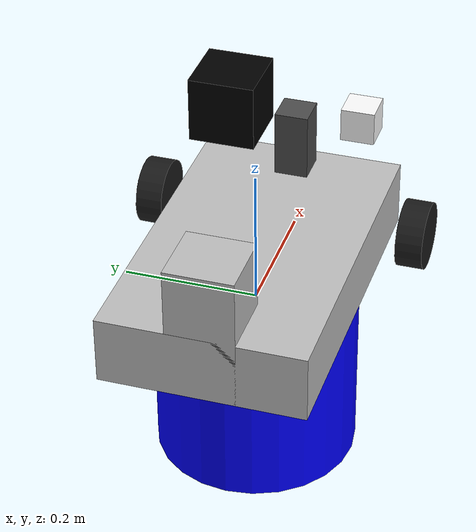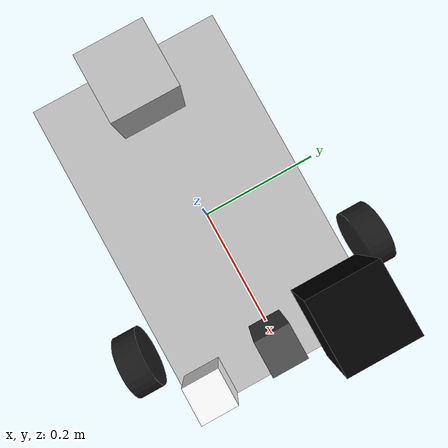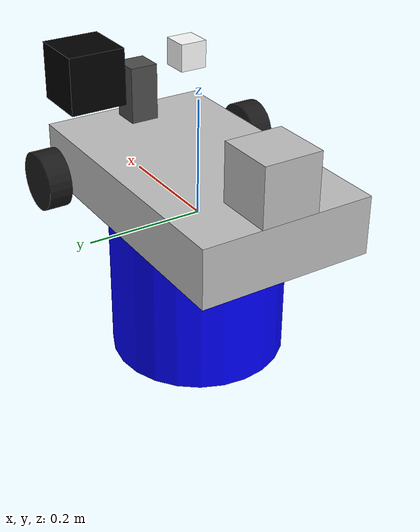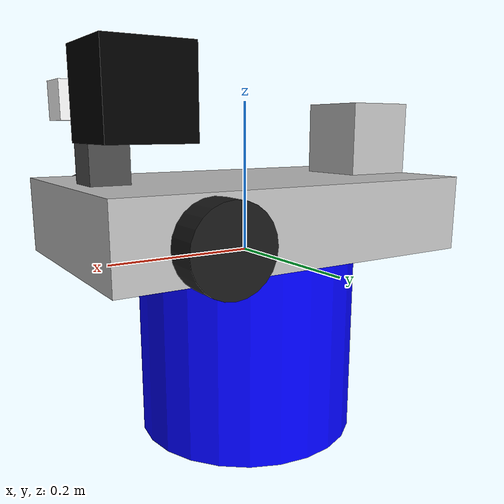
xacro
<?xml version="1.0"?>
<robot xmlns:xacro="http://www.ros.org/wiki/xacro" name="firefighter_robot">

  <!-- Robot Properties -->
  <xacro:property name="base_length" value="0.5" />
  <xacro:property name="base_width" value="0.3" />
  <xacro:property name="base_height" value="0.1" />
  <xacro:property name="wheel_radius" value="0.05" />
  <xacro:property name="wheel_width" value="0.04" />
  <xacro:property name="wheel_ygap" value="0.2" />
  <xacro:property name="wheel_xoff" value="0.15" />
  <xacro:property name="wheel_zoff" value="0.05" />
  <xacro:property name="caster_radius" value="0.025" />
  <xacro:property name="caster_xoff" value="-0.15" />

  <!-- Base Link (Heat-Resistant Chassis) -->
  <link name="base_link">
    <inertial>
      <origin xyz="0 0 ${base_height/2}" rpy="0 0 0" />
      <mass value="5.0" />
      <inertia ixx="0.1" ixy="0" ixz="0" iyy="0.1" iyz="0" izz="0.1" />
    </inertial>
    <visual>
      <origin xyz="0 0 ${base_height/2}" rpy="0 0 0" />
      <geometry>
        <box size="${base_length} ${base_width} ${base_height}" />
      </geometry>
      <material name="silver">
        <color rgba="0.75 0.75 0.75 1.0" /> <!-- Heat-resistant material -->
      </material>
    </visual>
    <collision>
      <origin xyz="0 0 ${base_height/2}" rpy="0 0 0" />
      <geometry>
        <box size="${base_length} ${base_width} ${base_height}" />
      </geometry>
    </collision>
  </link>

  <!-- Left Wheel -->
  <link name="left_wheel">
    <inertial>
      <origin xyz="0 0 0" rpy="${pi/2} 0 0" />
      <mass value="0.5" />
      <inertia ixx="0.001" ixy="0" ixz="0" iyy="0.001" iyz="0" izz="0.001" />
    </inertial>
    <visual>
      <origin xyz="0 0 0" rpy="${pi/2} 0 0" />
      <geometry>
        <cylinder radius="${wheel_radius}" length="${wheel_width}" />
      </geometry>
      <material name="black">
        <color rgba="0.1 0.1 0.1 1.0" />
      </material>
    </visual>
    <collision>
      <origin xyz="0 0 0" rpy="${pi/2} 0 0" />
      <geometry>
        <cylinder radius="${wheel_radius}" length="${wheel_width}" />
      </geometry>
    </collision>
  </link>

  <!-- Left Wheel Joint -->
  <joint name="left_wheel_joint" type="continuous">
    <parent link="base_link" />
    <child link="left_wheel" />
    <origin xyz="${wheel_xoff} ${wheel_ygap} ${wheel_zoff}" rpy="0 0 0" />
    <axis xyz="0 1 0" />
    <dynamics damping="0.1" friction="0.1" />
  </joint>

  <!-- Right Wheel -->
  <link name="right_wheel">
    <inertial>
      <origin xyz="0 0 0" rpy="${pi/2} 0 0" />
      <mass value="0.5" />
      <inertia ixx="0.001" ixy="0" ixz="0" iyy="0.001" iyz="0" izz="0.001" />
    </inertial>
    <visual>
      <origin xyz="0 0 0" rpy="${pi/2} 0 0" />
      <geometry>
        <cylinder radius="${wheel_radius}" length="${wheel_width}" />
      </geometry>
      <material name="black">
        <color rgba="0.1 0.1 0.1 1.0" />
      </material>
    </visual>
    <collision>
      <origin xyz="0 0 0" rpy="${pi/2} 0 0" />
      <geometry>
        <cylinder radius="${wheel_radius}" length="${wheel_width}" />
      </geometry>
    </collision>
  </link>

  <!-- Right Wheel Joint -->
  <joint name="right_wheel_joint" type="continuous">
    <parent link="base_link" />
    <child link="right_wheel" />
    <origin xyz="${wheel_xoff} -${wheel_ygap} ${wheel_zoff}" rpy="0 0 0" />
    <axis xyz="0 1 0" />
    <dynamics damping="0.1" friction="0.1" />
  </joint>

  <!-- Caster Wheel -->
  <link name="caster">
    <inertial>
      <origin xyz="0 0 0" rpy="0 0 0" />
      <mass value="0.1" />
      <inertia ixx="0.0001" ixy="0" ixz="0" iyy="0.0001" iyz="0" izz="0.0001" />
    </inertial>
    <visual>
      <origin xyz="0 0 0" rpy="0 0 0" />
      <geometry>
        <sphere radius="${caster_radius}" />
      </geometry>
      <material name="black">
        <color rgba="0.1 0.1 0.1 1.0" />
      </material>
    </visual>
    <collision>
      <origin xyz="0 0 0" rpy="0 0 0" />
      <geometry>
        <sphere radius="${caster_radius}" />
      </geometry>
    </collision>
  </link>

  <!-- Caster Joint -->
  <joint name="caster_joint" type="fixed">
    <parent link="base_link" />
    <child link="caster" />
    <origin xyz="${caster_xoff} 0 ${caster_radius}" rpy="0 0 0" />
  </joint>

  <!-- Sensor Mount (For Temperature and Gas Sensors) -->
  <link name="sensor_mount">
    <inertial>
      <origin xyz="0 0 0" rpy="0 0 0" />
      <mass value="0.1" />
      <inertia ixx="0.0001" ixy="0" ixz="0" iyy="0.0001" iyz="0" izz="0.0001" />
    </inertial>
    <visual>
      <origin xyz="0 0 0.05" rpy="0 0 0" />
      <geometry>
        <box size="0.05 0.05 0.1" />
      </geometry>
      <material name="grey">
        <color rgba="0.3 0.3 0.3 1.0" />
      </material>
    </visual>
    <collision>
      <origin xyz="0 0 0.05" rpy="0 0 0" />
      <geometry>
        <box size="0.05 0.05 0.1" />
      </geometry>
    </collision>
  </link>

  <!-- Sensor Mount Joint -->
  <joint name="sensor_mount_joint" type="fixed">
    <parent link="base_link" />
    <child link="sensor_mount" />
    <origin xyz="0.2 0 ${base_height}" rpy="0 0 0" />
  </joint>

  <!-- Specialized Links for Firefighter Robot (Document 5, Page 1) -->
  <!-- Thermal Camera -->
  <link name="thermal_camera_link">
    <inertial>
      <origin xyz="0 0 0" rpy="0 0 0" />
      <mass value="0.5" />
      <inertia ixx="0.001" ixy="0" ixz="0" iyy="0.001" iyz="0" izz="0.001" />
    </inertial>
    <visual>
      <origin xyz="0 0 0" rpy="0 0 0" />
      <geometry>
        <box size="0.1 0.1 0.1" />
      </geometry>
      <material name="black">
        <color rgba="0.0 0.0 0.0 1.0" />
      </material>
    </visual>
    <collision>
      <origin xyz="0 0 0" rpy="0 0 0" />
      <geometry>
        <box size="0.1 0.1 0.1" />
      </geometry>
    </collision>
  </link>

  <!-- Water Tank (for Water/Foam Dispensing) -->
  <link name="water_tank_link">
    <inertial>
      <origin xyz="0 0 0" rpy="0 0 0" />
      <mass value="2.0" />
      <inertia ixx="0.01" ixy="0" ixz="0" iyy="0.01" iyz="0" izz="0.01" />
    </inertial>
    <visual>
      <origin xyz="0 0 0" rpy="0 0 0" />
      <geometry>
        <cylinder radius="0.15" length="0.3" />
      </geometry>
      <material name="blue">
        <color rgba="0.0 0.0 1.0 1.0" />
      </material>
    </visual>
    <collision>
      <origin xyz="0 0 0" rpy="0 0 0" />
      <geometry>
        <cylinder radius="0.15" length="0.3" />
      </geometry>
    </collision>
  </link>

  <!-- Pump (for Water/Foam Dispensing) -->
  <link name="pump_link">
    <inertial>
      <origin xyz="0 0 0" rpy="0 0 0" />
      <mass value="1.0" />
      <inertia ixx="0.001" ixy="0" ixz="0" iyy="0.001" iyz="0" izz="0.001" />
    </inertial>
    <visual>
      <origin xyz="0 0 0" rpy="0 0 0" />
      <geometry>
        <box size="0.1 0.1 0.2" />
      </geometry>
      <material name="silver">
        <color rgba="0.75 0.75 0.75 1.0" />
      </material>
    </visual>
    <collision>
      <origin xyz="0 0 0" rpy="0 0 0" />
      <geometry>
        <box size="0.1 0.1 0.2" />
      </geometry>
    </collision>
  </link>

  <!-- High-Intensity Light -->
  <link name="light_link">
    <inertial>
      <origin xyz="0 0 0" rpy="0 0 0" />
      <mass value="0.2" />
      <inertia ixx="0.0005" ixy="0" ixz="0" iyy="0.0005" iyz="0" izz="0.0005" />
    </inertial>
    <visual>
      <origin xyz="0 0 0" rpy="0 0 0" />
      <geometry>
        <box size="0.05 0.05 0.05" />
      </geometry>
      <material name="white">
        <color rgba="1.0 1.0 1.0 1.0" />
      </material>
    </visual>
    <collision>
      <origin xyz="0 0 0" rpy="0 0 0" />
      <geometry>
        <box size="0.05 0.05 0.05" />
      </geometry>
    </collision>
  </link>

  <!-- Joints for Specialized Components -->
  <joint name="thermal_camera_joint" type="fixed">
    <parent link="base_link" />
    <child link="thermal_camera_link" />
    <origin xyz="0.2 0.1 0.2" rpy="0 0 0" />
  </joint>

  <joint name="water_tank_joint" type="fixed">
    <parent link="base_link" />
    <child link="water_tank_link" />
    <origin xyz="0 0 -0.1" rpy="0 0 0" />
  </joint>

  <joint name="pump_joint" type="fixed">
    <parent link="base_link" />
    <child link="pump_link" />
    <origin xyz="-0.2 0 0.1" rpy="0 0 0" />
  </joint>

  <joint name="light_joint" type="fixed">
    <parent link="base_link" />
    <child link="light_link" />
    <origin xyz="0.2 -0.1 0.2" rpy="0 0 0" />
  </joint>

  <!-- Ignition Gazebo Plugins -->
  <gazebo>
    <!-- Differential Drive System -->
    <plugin filename="ign-gazebo-diff-drive-system" name="ignition::gazebo::systems::DiffDrive">
      <left_joint>left_wheel_joint</left_joint>
      <right_joint>right_wheel_joint</right_joint>
      <wheel_separation>${2 * wheel_ygap}</wheel_separation>
      <wheel_radius>${wheel_radius}</wheel_radius>
      <odom_publish_frequency>10</odom_publish_frequency>
      <topic>/cmd_vel</topic>
      <frame_id>odom</frame_id>
      <child_frame_id>base_link</child_frame_id>
    </plugin>

    <!-- Thermal Camera Sensor -->
    <plugin filename="ign-gazebo-camera-system" name="ignition::gazebo::systems::Camera">
      <topic>/firefighter_robot/thermal_camera</topic>
      <camera>
        <horizontal_fov>1.047</horizontal_fov>  <!-- 60 degrees -->
        <image>
          <width>320</width>
          <height>240</height>
          <format>R8G8B8</format>
        </image>
        <clip>
          <near>0.1</near>
          <far>100</far>
        </clip>
      </camera>
      <link>thermal_camera_link</link>
    </plugin>

    <!-- IMU Sensor (For Temperature/Gas Sensors) -->
    <plugin filename="ign-gazebo-imu-system" name="ignition::gazebo::systems::Imu">
      <topic>/firefighter_robot/imu</topic>
      <update_rate>100</update_rate>
    </plugin>

    <!-- Material Colors for Ignition Gazebo -->
    <material reference="base_link">
      <ambient>0.75 0.75 0.75 1.0</ambient>
      <diffuse>0.75 0.75 0.75 1.0</diffuse>
    </material>
    <material reference="left_wheel">
      <ambient>0.1 0.1 0.1 1.0</ambient>
      <diffuse>0.1 0.1 0.1 1.0</diffuse>
    </material>
    <material reference="right_wheel">
      <ambient>0.1 0.1 0.1 1.0</ambient>
      <diffuse>0.1 0.1 0.1 1.0</diffuse>
    </material>
    <material reference="caster">
      <ambient>0.1 0.1 0.1 1.0</ambient>
      <diffuse>0.1 0.1 0.1 1.0</diffuse>
    </material>
    <material reference="sensor_mount">
      <ambient>0.3 0.3 0.3 1.0</ambient>
      <diffuse>0.3 0.3 0.3 1.0</diffuse>
    </material>
    <material reference="thermal_camera_link">
      <ambient>0.0 0.0 0.0 1.0</ambient>
      <diffuse>0.0 0.0 0.0 1.0</diffuse>
    </material>
    <material reference="water_tank_link">
      <ambient>0.0 0.0 1.0 1.0</ambient>
      <diffuse>0.0 0.0 1.0 1.0</diffuse>
    </material>
    <material reference="pump_link">
      <ambient>0.75 0.75 0.75 1.0</ambient>
      <diffuse>0.75 0.75 0.75 1.0</diffuse>
    </material>
    <material reference="light_link">
      <ambient>1.0 1.0 1.0 1.0</ambient>
      <diffuse>1.0 1.0 1.0 1.0</diffuse>
      <emissive>1.0 1.0 1.0 1.0</emissive>
    </material>
  </gazebo>

</robot>
